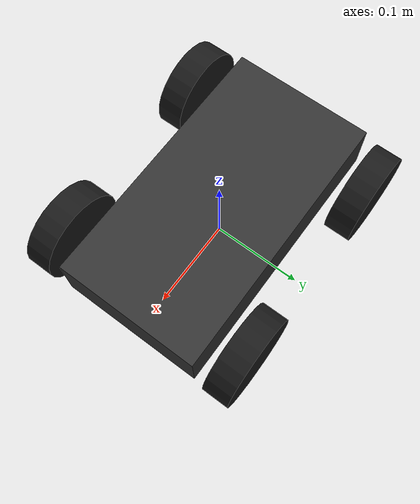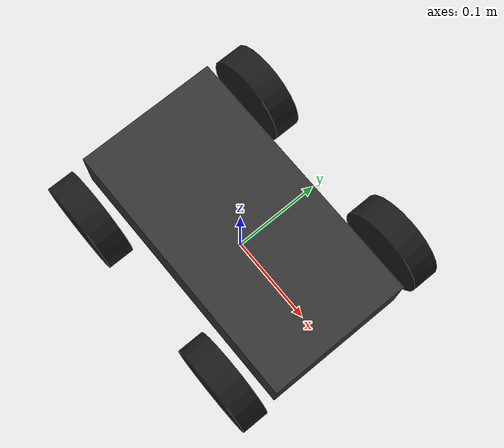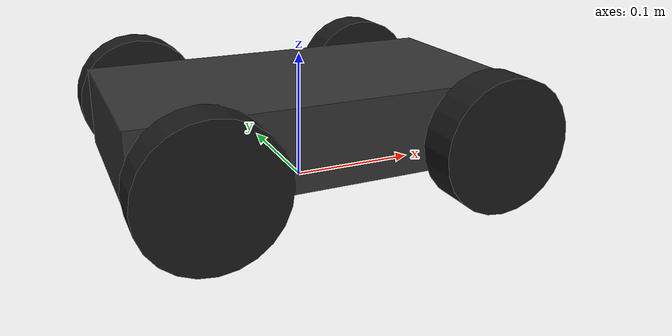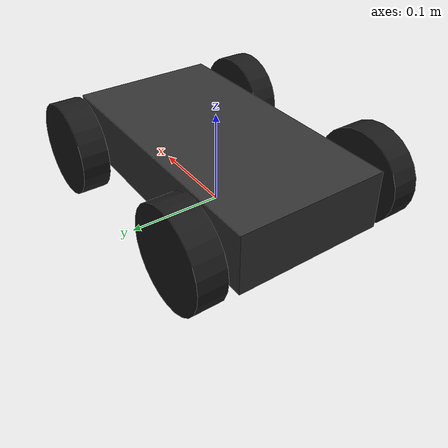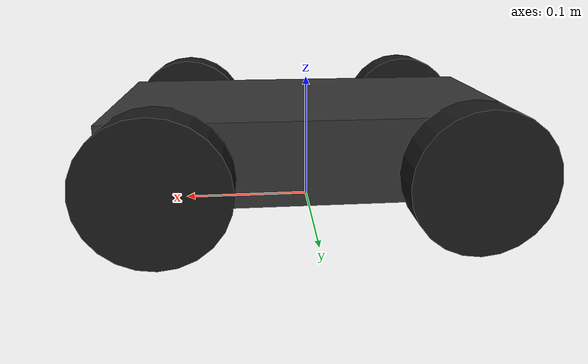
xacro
<?xml version="1.0"?>
<robot xmlns:xacro="http://www.ros.org/wiki/xacro">

  <!-- ─── Tham số kích thước (đơn vị: mét) ─────────────────────── -->
  <!-- CẦN ĐIỀU CHỈNH theo kích thước khung xe thực tế -->
  <xacro:property name="base_length"      value="0.297"/> <!-- chiều dài chassis (không tính bánh) -->
  <xacro:property name="base_width"       value="0.158"/> <!-- chiều rộng khung chassis thật (không gồm bánh) -->
  <xacro:property name="base_height"      value="0.062"/> <!-- chiều cao chassis (không tính bánh) -->
  <xacro:property name="ground_clearance" value="0.022"/> <!-- mặt đất → mặt dưới khung gầm -->
  <xacro:property name="wheel_radius"     value="0.05"/>  <!-- bán kính bánh (đường kính 100mm → r=50mm) -->
  <xacro:property name="wheel_width"      value="0.029"/> <!-- bề rộng bánh -->
  <xacro:property name="wheelbase"        value="0.21"/>  <!-- khoảng cách trục trước-sau -->
  <xacro:property name="track_width"      value="0.217"/> <!-- khoảng cách 2 tâm bánh ngang (tâm→tâm) -->
  <!-- Khoảng trống lọt lòng giữa 2 mặt trong của 2 bánh (dẫn xuất) = 0.188m -->
  <xacro:property name="wheel_inner_gap"  value="${track_width - wheel_width}"/>
  <!-- z của base_link so với base_footprint = ground_clearance + chassis_height/2 = 0.053m -->
  <xacro:property name="base_link_z"      value="${ground_clearance + base_height/2}"/>

  <!-- ─── Materials ─────────────────────────────────────────────── -->
  <material name="dark_grey">
    <color rgba="0.2 0.2 0.2 1.0"/>
  </material>
  <material name="light_grey">
    <color rgba="0.7 0.7 0.7 1.0"/>
  </material>
  <material name="blue">
    <color rgba="0.0 0.4 0.8 1.0"/>
  </material>
  <material name="black">
    <color rgba="0.1 0.1 0.1 1.0"/>
  </material>

  <!-- ─── Base footprint ────────────────────────────────────────── -->
  <link name="base_footprint"/>

  <joint name="base_footprint_joint" type="fixed">
    <parent link="base_footprint"/>
    <child  link="base_link"/>
    <origin xyz="0 0 ${base_link_z}" rpy="0 0 0"/>
  </joint>

  <!-- ─── Base link (chassis) ───────────────────────────────────── -->
  <link name="base_link">
    <visual>
      <geometry>
        <box size="${base_length} ${base_width} ${base_height}"/>
      </geometry>
      <material name="dark_grey"/>
    </visual>
    <collision>
      <geometry>
        <box size="${base_length} ${base_width} ${base_height}"/>
      </geometry>
    </collision>
    <xacro:inertial_box mass="2.0" l="${base_length}" w="${base_width}" h="${base_height}"/>
  </link>

  <!-- ─── Wheel macro (bánh sau dẫn động) ─────────────────────── -->
  <!-- Quy ước trục Z (theo repo bạn bè): cả frame của bánh được xoay  -->
  <!-- -90° quanh X qua origin của joint, nên trục quay khai báo là Z  -->
  <!-- (0 0 1) trong frame đã xoay → ứng với trục Y thế giới (lăn tới). -->
  <!-- mirrored=1 → +90° thay vì -90° (lật chiều trục cho bánh đối xứng).-->
  <xacro:macro name="wheel" params="name y mirrored">
    <link name="${name}_wheel">
      <visual>
        <geometry>
          <cylinder radius="${wheel_radius}" length="${wheel_width}"/>
        </geometry>
        <material name="black"/>
      </visual>
      <collision>
        <geometry>
          <cylinder radius="${wheel_radius}" length="${wheel_width}"/>
        </geometry>
      </collision>
      <xacro:inertial_cylinder mass="0.15" r="${wheel_radius}" h="${wheel_width}"/>
    </link>

    <joint name="${name}_wheel_joint" type="continuous">
      <parent link="base_link"/>
      <child  link="${name}_wheel"/>
      <!-- z = wheel_radius - base_link_z = 0.05 - 0.053 = -0.003m -->
      <origin xyz="${-wheelbase/2} ${y} ${wheel_radius - base_link_z}"
              rpy="${-pi/2 + pi*mirrored} 0 0"/>
      <axis xyz="0 0 1"/>
    </joint>
  </xacro:macro>

  <!-- ─── Steering wheel macro (bánh trước lái) ────────────────── -->
  <!-- Cấu trúc (theo repo bạn bè):                                    -->
  <!--   base_link → steer_joint (revolute, axis Z) → steer_link       -->
  <!--            → wheel_joint (continuous, axis Z, frame xoay) → wheel-->
  <!-- steer_link đặt tại mặt phẳng base_link (z=0); bánh hạ xuống      -->
  <!-- z=wheel_radius-base_link_z. Trục kingpin lái là Z thẳng đứng.    -->
  <xacro:macro name="steering_wheel" params="name y mirrored">
    <!-- Link trung gian (kingpin), chỉ mang inertia tối thiểu -->
    <link name="${name}_steer_link">
      <xacro:inertial_box mass="0.001" l="0.01" w="0.01" h="0.01"/>
    </link>

    <!-- Joint lái: revolute quanh trục Z, giới hạn ±30° -->
    <joint name="${name}_steer_joint" type="revolute">
      <parent link="base_link"/>
      <child  link="${name}_steer_link"/>
      <origin xyz="${wheelbase/2} ${y} 0" rpy="0 0 0"/>
      <axis xyz="0 0 1"/>
      <limit lower="-0.5236" upper="0.5236" effort="10.0" velocity="1.0"/>
      <dynamics damping="0.1" friction="0.1"/>
    </joint>

    <!-- Bánh trước: trục quay Z (frame xoay ±90° quanh X), parent là steer_link -->
    <link name="${name}_wheel">
      <visual>
        <geometry>
          <cylinder radius="${wheel_radius}" length="${wheel_width}"/>
        </geometry>
        <material name="black"/>
      </visual>
      <collision>
        <geometry>
          <cylinder radius="${wheel_radius}" length="${wheel_width}"/>
        </geometry>
      </collision>
      <xacro:inertial_cylinder mass="0.15" r="${wheel_radius}" h="${wheel_width}"/>
    </link>

    <joint name="${name}_wheel_joint" type="continuous">
      <parent link="${name}_steer_link"/>
      <child  link="${name}_wheel"/>
      <origin xyz="0 0 ${wheel_radius - base_link_z}"
              rpy="${-pi/2 + pi*mirrored} 0 0"/>
      <axis xyz="0 0 1"/>
    </joint>
  </xacro:macro>

  <!-- Bánh sau dẫn động (JGB37-520) -->
  <xacro:wheel name="rear_left"   y="${track_width/2}"  mirrored="0"/>
  <xacro:wheel name="rear_right"  y="${-track_width/2}" mirrored="0"/>

  <!-- Bánh trước lái (HTS-20H) — có revolute steer_joint cho Ackermann controller -->
  <xacro:steering_wheel name="front_left"  y="${track_width/2}"  mirrored="0"/>
  <xacro:steering_wheel name="front_right" y="${-track_width/2}" mirrored="1"/>

  <!-- ─── Gazebo: friction cho bánh ────────────────────────────── -->
  <!-- mu1 = hệ số ma sát tĩnh, mu2 = hệ số ma sát trượt -->
  <gazebo reference="rear_left_wheel">
    <mu1>1.0</mu1>
    <mu2>0.5</mu2>
    <material>Gazebo/Black</material>
  </gazebo>
  <gazebo reference="rear_right_wheel">
    <mu1>1.0</mu1>
    <mu2>0.5</mu2>
    <material>Gazebo/Black</material>
  </gazebo>
  <gazebo reference="front_left_wheel">
    <mu1>1.0</mu1>
    <mu2>0.5</mu2>
    <material>Gazebo/Black</material>
  </gazebo>
  <gazebo reference="front_right_wheel">
    <mu1>1.0</mu1>
    <mu2>0.5</mu2>
    <material>Gazebo/Black</material>
  </gazebo>

  <!-- ─── Gazebo: màu sắc các link ──────────────────────────────── -->
  <gazebo reference="base_link">
    <material>Gazebo/DarkGrey</material>
  </gazebo>
  <gazebo reference="front_left_steer_link">
    <material>Gazebo/Grey</material>
  </gazebo>
  <gazebo reference="front_right_steer_link">
    <material>Gazebo/Grey</material>
  </gazebo>

</robot>
